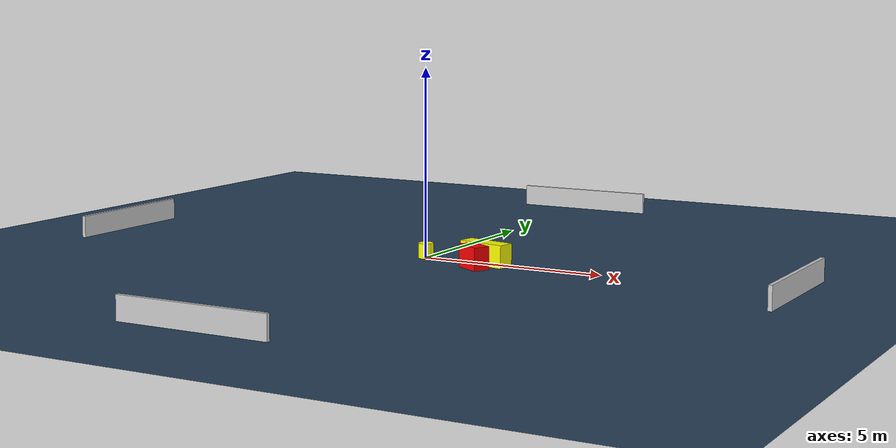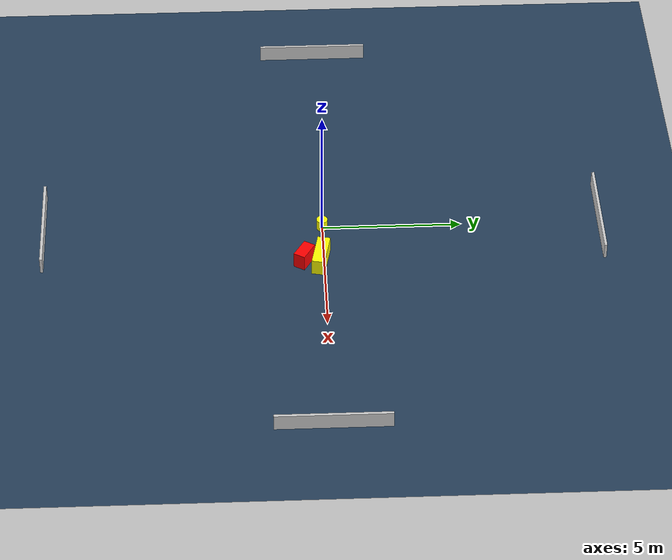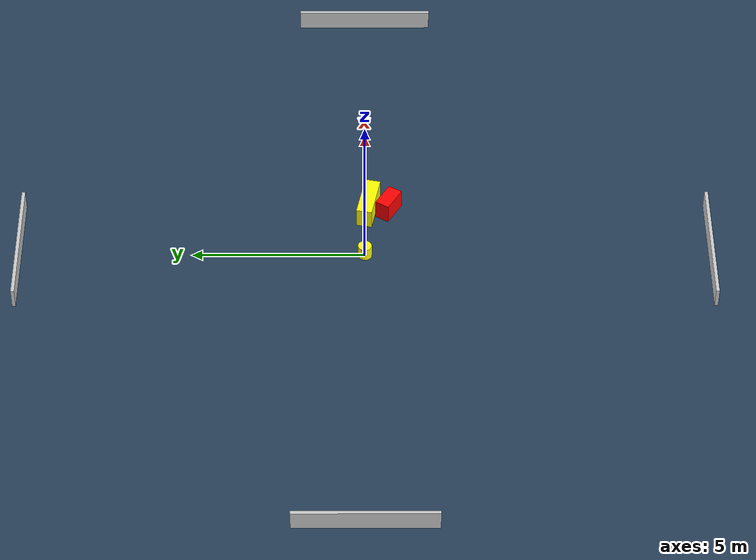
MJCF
<?xml version="1.0" ?>
<mujoco model="generated_environment">
  <option timestep="0.01" integrator="RK4" cone="elliptic"/>
  <default>
    <geom density="1"/>
  </default>
  <asset>
    <texture builtin="gradient" height="3072" name="skybox" rgb1="0.3 0.5 0.7" rgb2="0 0 0" type="skybox" width="512"/>
    <texture builtin="checker" height="300" name="groundplane" rgb1="0.2 0.3 0.4" rgb2="0.1 0.2 0.3" type="2d" width="300"/>
    <material name="groundplane" reflectance="0.2" texrepeat="5 5" texture="groundplane"/>
  </asset>
  <worldbody>
    <light dir="0 0 -1" directional="true" pos="0 0 1.5"/>
    <geom condim="3" friction="0.5 0.005 0.001" material="groundplane" name="floor" pos="0 0 0" size="0 0 0.05" type="plane"/>
    <body name="walls">
      <geom name="wall_1" condim="4" pos="-10.0 0.0 0.3" rgba="0.800000011920929 0.800000011920929 0.800000011920929 1.0" size="0.05 2.0 0.3" type="box"/>
      <geom name="wall_2" condim="4" pos="10.0 0.0 0.3" rgba="0.800000011920929 0.800000011920929 0.800000011920929 1.0" size="0.05 2.0 0.3" type="box"/>
      <geom name="wall_3" condim="4" pos="0.0 -10.0 0.3" rgba="0.800000011920929 0.800000011920929 0.800000011920929 1.0" size="2.0 0.05 0.3" type="box"/>
      <geom name="wall_4" condim="4" pos="0.0 10.0 0.3" rgba="0.800000011920929 0.800000011920929 0.800000011920929 1.0" size="2.0 0.05 0.3" type="box"/>
    </body>
    <body name="robot">
      <joint name="joint_x" type="slide" pos="0 0 0" axis="1 0 0"/>
      <joint name="joint_y" type="slide" pos="0 0 0" axis="0 1 0"/>
      <geom name="robot" type="cylinder" pos="0.0 0.0 0.2" size="0.2 0.2 0.0" mass="5.0" friction="1.0 0.005 0.0001" condim="4" rgba="1.0 1.0 0.0 1.0"/>
    </body>
    <body name="obstacle_1_movable">
      <geom name="obstacle_1_movable" condim="4" pos="1.8356161538540037 -0.1035869236063234 0.3" euler="0 0 348.60921382540283" friction="0.0 0.005 0.001" rgba="1.0 1.0 0.0 1.0" size="0.658247562305414 0.2280382838348037 0.3" type="box" mass="0.1"/>
      <joint type="free"/>
    </body>
    <body name="obstacle_2_static">
      <geom name="obstacle_2_static" condim="4" pos="1.8049010346874208 -0.6943899088665662 0.3" euler="0 0 328.9894165728267" friction="0.0 0.005 0.001" rgba="1.0 0.0 0.0 1.0" size="0.38389088503980384 0.214650376571327 0.3" type="box"/>
    </body>
  </worldbody>
  <actuator>
    <motor name="actuator_x" joint="joint_x" gear="1" ctrlrange="-1 1"/>
    <motor name="actuator_y" joint="joint_y" gear="1" ctrlrange="-1 1"/>
  </actuator>
</mujoco>
